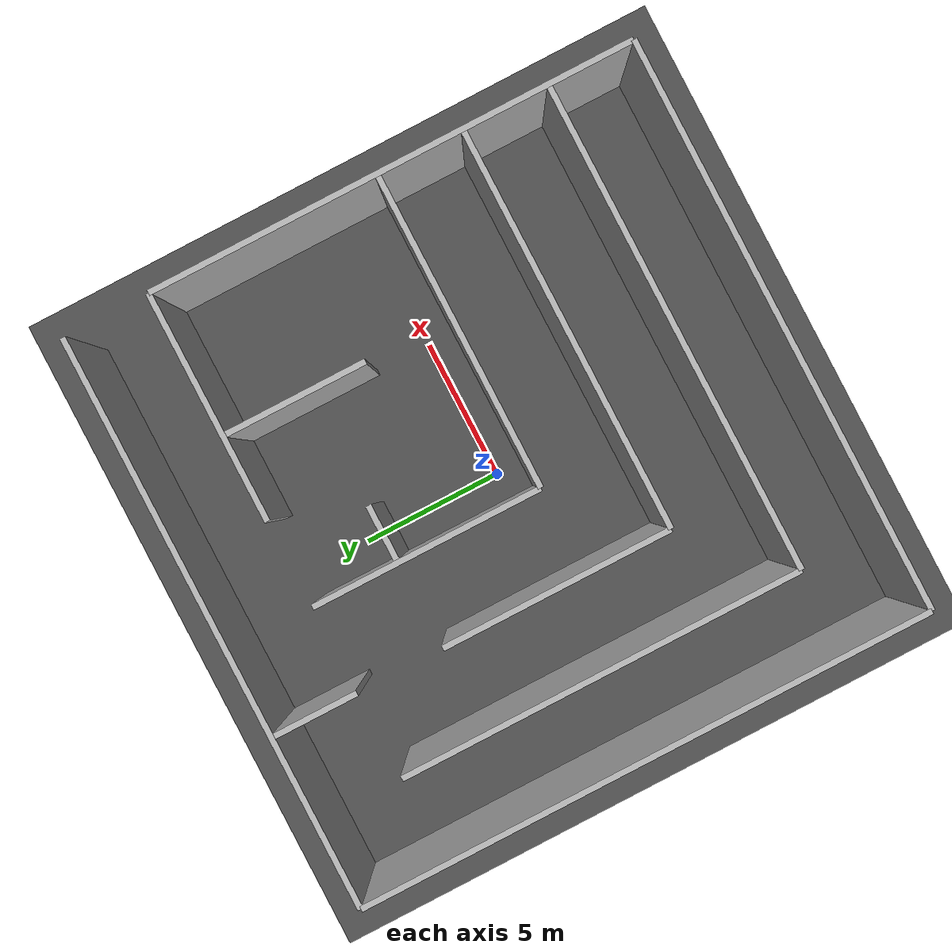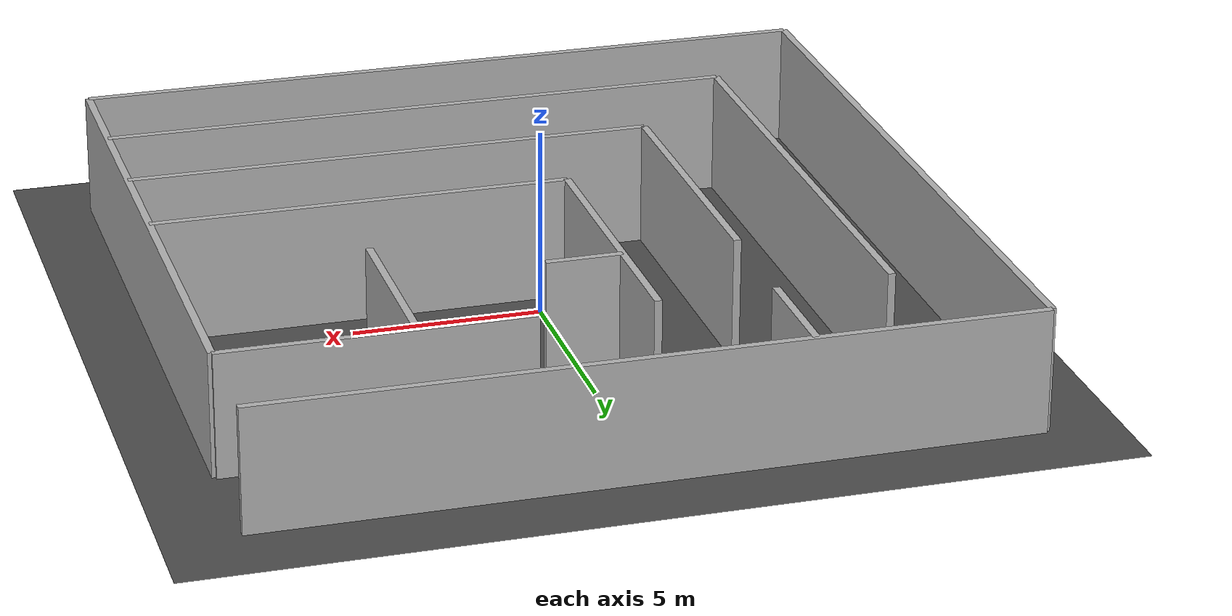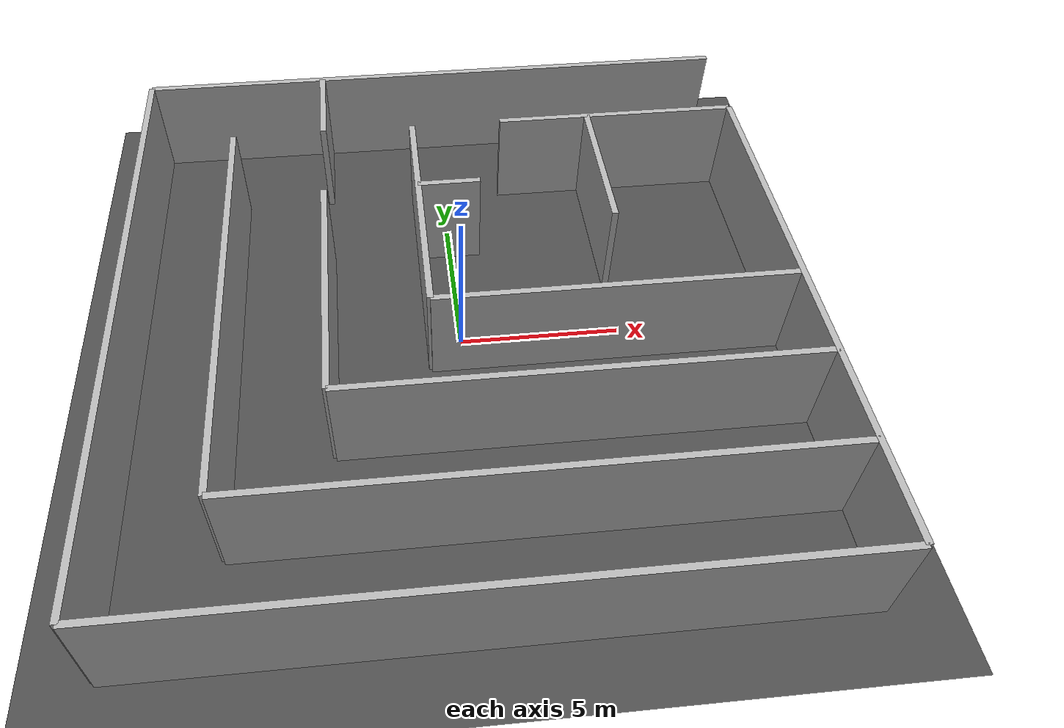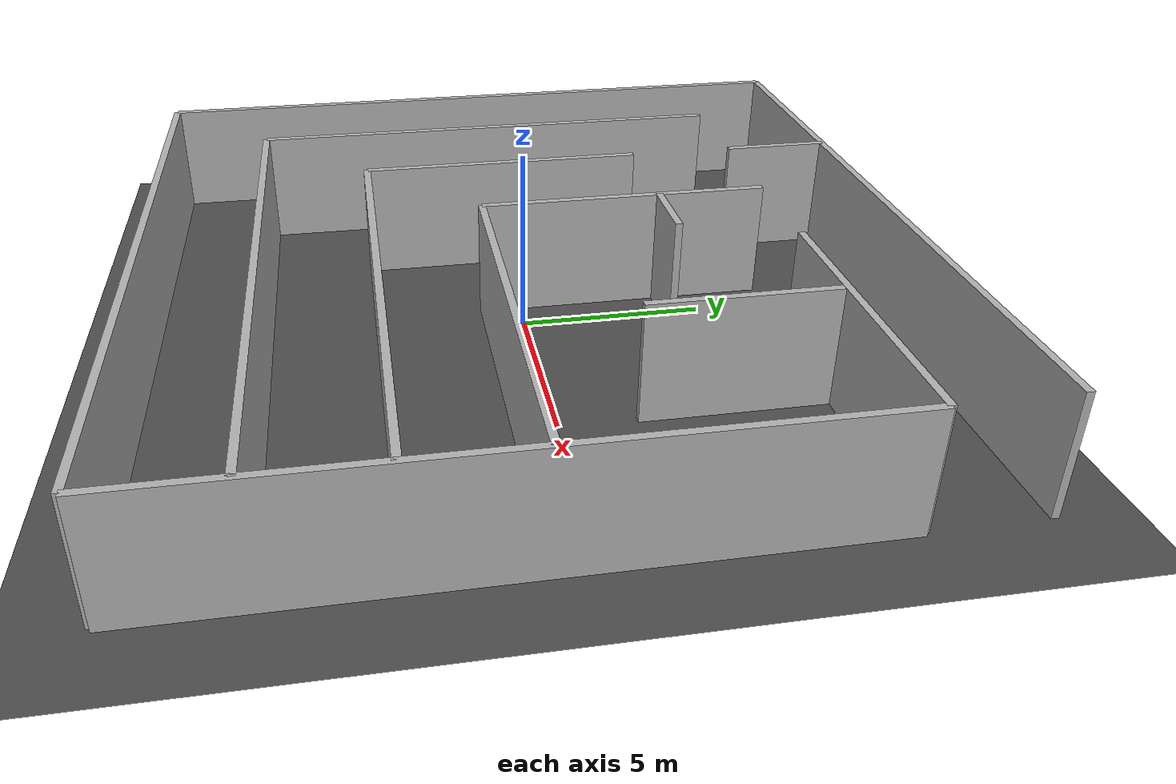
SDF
<?xml version="1.0" encoding="UTF-8"?>
<sdf version="1.9">
  <world name="default">
    <physics type="ode">
      <max_step_size>0.004</max_step_size>
      <real_time_factor>1.0</real_time_factor>
      <real_time_update_rate>250</real_time_update_rate>
    </physics>
    <plugin name="gz::sim::systems::Physics" filename="gz-sim-physics-system"/>
    <plugin name="gz::sim::systems::UserCommands" filename="gz-sim-user-commands-system"/>
    <plugin name="gz::sim::systems::SceneBroadcaster" filename="gz-sim-scene-broadcaster-system"/>
    <plugin name="gz::sim::systems::Contact" filename="gz-sim-contact-system"/>
    <plugin name="gz::sim::systems::Imu" filename="gz-sim-imu-system"/>
    <plugin name="gz::sim::systems::AirPressure" filename="gz-sim-air-pressure-system"/>
    <plugin name="gz::sim::systems::AirSpeed" filename="gz-sim-air-speed-system"/>
    <plugin name="gz::sim::systems::ApplyLinkWrench" filename="gz-sim-apply-link-wrench-system"/>
    <plugin name="gz::sim::systems::NavSat" filename="gz-sim-navsat-system"/>
    <plugin name="gz::sim::systems::Sensors" filename="gz-sim-sensors-system">
      <render_engine>ogre2</render_engine>
    </plugin>
    <gui fullscreen="false">
      <!-- 3D scene -->
      <plugin filename="MinimalScene" name="3D View">
        <gz-gui>
          <title>3D View</title>
          <property type="bool" key="showTitleBar">false</property>
          <property type="string" key="state">docked</property>
        </gz-gui>
        <engine>ogre2</engine>
        <scene>scene</scene>
        <ambient_light>0.4 0.4 0.4</ambient_light>
        <background_color>0.8 0.8 0.8</background_color>
        <camera_pose>-6 0 6 0 0.5 0</camera_pose>
        <camera_clip>
          <near>0.25</near>
          <far>25000</far>
        </camera_clip>
      </plugin>
      <!-- Plugins that add functionality to the scene -->
      <plugin filename="EntityContextMenuPlugin" name="Entity context menu">
        <gz-gui>
          <property key="state" type="string">floating</property>
          <property key="width" type="double">5</property>
          <property key="height" type="double">5</property>
          <property key="showTitleBar" type="bool">false</property>
        </gz-gui>
      </plugin>
      <plugin filename="GzSceneManager" name="Scene Manager">
        <gz-gui>
          <property key="resizable" type="bool">false</property>
          <property key="width" type="double">5</property>
          <property key="height" type="double">5</property>
          <property key="state" type="string">floating</property>
          <property key="showTitleBar" type="bool">false</property>
        </gz-gui>
      </plugin>
      <plugin filename="InteractiveViewControl" name="Interactive view control">
        <gz-gui>
          <property key="resizable" type="bool">false</property>
          <property key="width" type="double">5</property>
          <property key="height" type="double">5</property>
          <property key="state" type="string">floating</property>
          <property key="showTitleBar" type="bool">false</property>
        </gz-gui>
      </plugin>
      <plugin filename="CameraTracking" name="Camera Tracking">
        <gz-gui>
          <property key="resizable" type="bool">false</property>
          <property key="width" type="double">5</property>
          <property key="height" type="double">5</property>
          <property key="state" type="string">floating</property>
          <property key="showTitleBar" type="bool">false</property>
        </gz-gui>
      </plugin>
      <plugin filename="MarkerManager" name="Marker manager">
        <gz-gui>
          <property key="resizable" type="bool">false</property>
          <property key="width" type="double">5</property>
          <property key="height" type="double">5</property>
          <property key="state" type="string">floating</property>
          <property key="showTitleBar" type="bool">false</property>
        </gz-gui>
      </plugin>
      <plugin filename="SelectEntities" name="Select Entities">
        <gz-gui>
          <anchors target="Select entities">
            <line own="right" target="right"/>
            <line own="top" target="top"/>
          </anchors>
          <property key="resizable" type="bool">false</property>
          <property key="width" type="double">5</property>
          <property key="height" type="double">5</property>
          <property key="state" type="string">floating</property>
          <property key="showTitleBar" type="bool">false</property>
        </gz-gui>
      </plugin>
      <plugin filename="VisualizationCapabilities" name="Visualization Capabilities">
        <gz-gui>
          <property key="resizable" type="bool">false</property>
          <property key="width" type="double">5</property>
          <property key="height" type="double">5</property>
          <property key="state" type="string">floating</property>
          <property key="showTitleBar" type="bool">false</property>
        </gz-gui>
      </plugin>
      <plugin filename="Spawn" name="Spawn Entities">
        <gz-gui>
          <anchors target="Select entities">
            <line own="right" target="right"/>
            <line own="top" target="top"/>
          </anchors>
          <property key="resizable" type="bool">false</property>
          <property key="width" type="double">5</property>
          <property key="height" type="double">5</property>
          <property key="state" type="string">floating</property>
          <property key="showTitleBar" type="bool">false</property>
        </gz-gui>
      </plugin>
      <plugin name="World control" filename="WorldControl">
        <gz-gui>
          <title>World control</title>
          <property type="bool" key="showTitleBar">0</property>
          <property type="bool" key="resizable">0</property>
          <property type="double" key="height">72</property>
          <property type="double" key="width">121</property>
          <property type="double" key="z">1</property>
          <property type="string" key="state">floating</property>
          <anchors target="3D View">
            <line own="left" target="left"/>
            <line own="bottom" target="bottom"/>
          </anchors>
        </gz-gui>
        <play_pause>1</play_pause>
        <step>1</step>
        <start_paused>1</start_paused>
      </plugin>
      <plugin name="World stats" filename="WorldStats">
        <gz-gui>
          <title>World stats</title>
          <property type="bool" key="showTitleBar">0</property>
          <property type="bool" key="resizable">0</property>
          <property type="double" key="height">110</property>
          <property type="double" key="width">290</property>
          <property type="double" key="z">1</property>
          <property type="string" key="state">floating</property>
          <anchors target="3D View">
            <line own="right" target="right"/>
            <line own="bottom" target="bottom"/>
          </anchors>
        </gz-gui>
        <sim_time>1</sim_time>
        <real_time>1</real_time>
        <real_time_factor>1</real_time_factor>
        <iterations>1</iterations>
      </plugin>
      <plugin name="Entity tree" filename="EntityTree"/>
    </gui>
    <gravity>0 0 -9.8</gravity>
    <magnetic_field>6e-06 2.3e-05 -4.2e-05</magnetic_field>
    <atmosphere type="adiabatic"/>
    <scene>
      <grid>false</grid>
      <ambient>0.4 0.4 0.4 1</ambient>
      <background>0.7 0.7 0.7 1</background>
      <shadows>true</shadows>
    </scene>

    <light name="sunUTC" type="directional">
      <pose>0 0 500 0 -0 0</pose>
      <cast_shadows>true</cast_shadows>
      <intensity>1</intensity>
      <direction>0.001 0.625 -0.78</direction>
      <diffuse>0.904 0.904 0.904 1</diffuse>
      <specular>0.271 0.271 0.271 1</specular>
      <attenuation>
        <range>2000</range>
        <linear>0</linear>
        <constant>1</constant>
        <quadratic>0</quadratic>
      </attenuation>
      <spot>
        <inner_angle>0</inner_angle>
        <outer_angle>0</outer_angle>
        <falloff>0</falloff>
      </spot>
    </light>
    <spherical_coordinates>
      <surface_model>EARTH_WGS84</surface_model>
      <world_frame_orientation>ENU</world_frame_orientation>
      <latitude_deg>47.397971057728974</latitude_deg>
      <longitude_deg> 8.546163739800146</longitude_deg>
      <elevation>0</elevation>
    </spherical_coordinates>

    <model name='maze'>
      <static>1</static>
      <link name='Wall_0'>
        <pose degrees="true">-10 -10 0 0 0 90</pose>
        <collision name='Wall_0_Collision'>
          <pose>10 0 1.25 0 0 0</pose>
          <geometry>
            <box>
              <size>20 0.2 4</size>
            </box>
          </geometry>
        </collision>
        <visual name='Wall_0_Visual'>
          <pose>10 0 1.25 0 0 0</pose>
          <geometry>
            <box>
              <size>20 0.2 4</size>
            </box>
          </geometry>
          <material>
            <diffuse>0.699999988 0.699999988 0.699999988 1</diffuse>
          </material>
        </visual>
      </link>

      <link name='Wall_1'>
        <pose>-10 -10 0 0 0 0</pose>
        <collision name='Wall_1_Collision'>
          <pose>10 0 1.25 0 0 0</pose>
          <geometry>
            <box>
              <size>20 0.2 4</size>
            </box>
          </geometry>
        </collision>
        <visual name='Wall_1_Visual'>
          <pose>10 0 1.25 0 0 0</pose>
          <geometry>
            <box>
              <size>20 0.2 4</size>
            </box>
          </geometry>
          <material>
            <diffuse>0.699999988 0.699999988 0.699999988 1</diffuse>
          </material>
        </visual>
      </link>

      <link name='Wall_2'>
        <pose degrees="true">10 -10 0 0 0 90</pose>
        <collision name='Wall_2_Collision'>
          <pose>8.5 0 1.25 0 0 0</pose>
          <geometry>
            <box>
              <size>17 0.2 4</size>
            </box>
          </geometry>
        </collision>
        <visual name='Wall_2_Visual'>
          <pose>8.5 0 1.25 0 0 0</pose>
          <geometry>
            <box>
              <size>17 0.2 4</size>
            </box>
          </geometry>
          <material>
            <diffuse>0.699999988 0.699999988 0.699999988 1</diffuse>
          </material>
        </visual>
      </link>

      <link name='Wall_3'>
        <pose>-10 10 0 0 0 0</pose>
        <collision name='Wall_3_Collision'>
          <pose>10 0 1.25 0 0 0</pose>
          <geometry>
            <box>
              <size>20 0.2 4</size>
            </box>
          </geometry>
        </collision>
        <visual name='Wall_3_Visual'>
          <pose>10 0 1.25 0 0 0</pose>
          <geometry>
            <box>
              <size>20 0.2 4</size>
            </box>
          </geometry>
          <material>
            <diffuse>0.699999988 0.699999988 0.699999988 1</diffuse>
          </material>
        </visual>
      </link>

      <link name='Wall_4'>
        <pose>-7 -7 0 0 0 0</pose>
        <collision name='Wall_4_Collision'>
          <pose>8.5 0 1.25 0 0 0</pose>
          <geometry>
            <box>
              <size>17 0.2 4</size>
            </box>
          </geometry>
        </collision>
        <visual name='Wall_4_Visual'>
          <pose>8.5 0 1.25 0 0 0</pose>
          <geometry>
            <box>
              <size>17 0.2 4</size>
            </box>
          </geometry>
          <material>
            <diffuse>0.699999988 0.699999988 0.699999988 1</diffuse>
          </material>
        </visual>
      </link>

      <link name='Wall_5'>
        <pose degrees="true">-7 -7 0 0 0 90</pose>
        <collision name='Wall_5_Collision'>
          <pose>7 0 1.25 0 0 0</pose>
          <geometry>
            <box>
              <size>14 0.2 4</size>
            </box>
          </geometry>
        </collision>
        <visual name='Wall_5_Visual'>
          <pose>7 0 1.25 0 0 0</pose>
          <geometry>
            <box>
              <size>14 0.2 4</size>
            </box>
          </geometry>
          <material>
            <diffuse>0.699999988 0.699999988 0.699999988 1</diffuse>
          </material>
        </visual>
      </link>

      <link name='Wall_6'>
        <pose>-4 -4 0 0 0 0</pose>
        <collision name='Wall_6_Collision'>
          <pose>7 0 1.25 0 0 0</pose>
          <geometry>
            <box>
              <size>14 0.2 4</size>
            </box>
          </geometry>
        </collision>
        <visual name='Wall_6_Visual'>
          <pose>7 0 1.25 0 0 0</pose>
          <geometry>
            <box>
              <size>14 0.2 4</size>
            </box>
          </geometry>
          <material>
            <diffuse>0.699999988 0.699999988 0.699999988 1</diffuse>
          </material>
        </visual>
      </link>

      <link name='Wall_7'>
        <pose degrees="true">-4 -4 0 0 0 90</pose>
        <collision name='Wall_7_Collision'>
          <pose>4 0 1.25 0 0 0</pose>
          <geometry>
            <box>
              <size>8 0.2 4</size>
            </box>
          </geometry>
        </collision>
        <visual name='Wall_7_Visual'>
          <pose>4 0 1.25 0 0 0</pose>
          <geometry>
            <box>
              <size>8 0.2 4</size>
            </box>
          </geometry>
          <material>
            <diffuse>0.699999988 0.699999988 0.699999988 1</diffuse>
          </material>
        </visual>
      </link>

      <link name='Wall_8'>
        <pose>-1 -1 0 0 0 0</pose>
        <collision name='Wall_8_Collision'>
          <pose>5.5 0 1.25 0 0 0</pose>
          <geometry>
            <box>
              <size>11 0.2 4</size>
            </box>
          </geometry>
        </collision>
        <visual name='Wall_8_Visual'>
          <pose>5.5 0 1.25 0 0 0</pose>
          <geometry>
            <box>
              <size>11 0.2 4</size>
            </box>
          </geometry>
          <material>
            <diffuse>0.699999988 0.699999988 0.699999988 1</diffuse>
          </material>
        </visual>
      </link>

      <link name='Wall_9'>
        <pose degrees="true">-1 -1 0 0 0 90</pose>
        <collision name='Wall_9_Collision'>
          <pose>4 0 1.25 0 0 0</pose>
          <geometry>
            <box>
              <size>8 0.2 4</size>
            </box>
          </geometry>
        </collision>
        <visual name='Wall_9_Visual'>
          <pose>4 0 1.25 0 0 0</pose>
          <geometry>
            <box>
              <size>8 0.2 4</size>
            </box>
          </geometry>
          <material>
            <diffuse>0.699999988 0.699999988 0.699999988 1</diffuse>
          </material>
        </visual>
      </link>

      <link name='Wall_10'>
        <pose degrees="true">-4 7 0 0 0 90</pose>
        <collision name='Wall_10_Collision'>
          <pose>1.5 0 1.25 0 0 0</pose>
          <geometry>
            <box>
              <size>3 0.2 4</size>
            </box>
          </geometry>
        </collision>
        <visual name='Wall_10_Visual'>
          <pose>1.5 0 1.25 0 0 0</pose>
          <geometry>
            <box>
              <size>3 0.2 4</size>
            </box>
          </geometry>
          <material>
            <diffuse>0.699999988 0.699999988 0.699999988 1</diffuse>
          </material>
        </visual>
      </link>

      <link name='Wall_11'>
        <pose>-1 4 0 0 0 0</pose>
        <collision name='Wall_11_Collision'>
          <pose>1 0 1.25 0 0 0</pose>
          <geometry>
            <box>
              <size>2 0.2 4</size>
            </box>
          </geometry>
        </collision>
        <visual name='Wall_11_Visual'>
          <pose>1 0 1.25 0 0 0</pose>
          <geometry>
            <box>
              <size>2 0.2 4</size>
            </box>
          </geometry>
          <material>
            <diffuse>0.699999988 0.699999988 0.699999988 1</diffuse>
          </material>
        </visual>
      </link>

      <link name='Wall_12'>
        <pose>2 7 0 0 0 0</pose>
        <collision name='Wall_12_Collision'>
          <pose>4 0 1.25 0 0 0</pose>
          <geometry>
            <box>
              <size>8 0.2 4</size>
            </box>
          </geometry>
        </collision>
        <visual name='Wall_12_Visual'>
          <pose>4 0 1.25 0 0 0</pose>
          <geometry>
            <box>
              <size>8 0.2 4</size>
            </box>
          </geometry>
          <material>
            <diffuse>0.699999988 0.699999988 0.699999988 1</diffuse>
          </material>
        </visual>
      </link>

      <link name='Wall_13'>
        <pose degrees="true">5 2 0 0 0 90</pose>
        <collision name='Wall_13_Collision'>
          <pose>2.5 0 1.25 0 0 0</pose>
          <geometry>
            <box>
              <size>5 0.2 4</size>
            </box>
          </geometry>
        </collision>
        <visual name='Wall_13_Visual'>
          <pose>2.5 0 1.25 0 0 0</pose>
          <geometry>
            <box>
              <size>5 0.2 4</size>
            </box>
          </geometry>
          <material>
            <diffuse>0.699999988 0.699999988 0.699999988 1</diffuse>
          </material>
        </visual>
      </link>
    </model>

    <model name="floor">
      <static>true</static>
      <link name="link">
        <collision name="collision">
          <geometry>
            <plane>
              <normal>0 0 1</normal>
              <size>100 100</size>
            </plane>
          </geometry>
          <surface>
            <friction>
              <ode>
                <mu>100</mu>
                <mu2>50</mu2>
              </ode>
            </friction>
          </surface>
        </collision>
        <visual name="visual">
          <cast_shadows>false</cast_shadows>
          <geometry>
            <plane>
              <normal>0 0 1</normal>
              <size>100 100</size>
            </plane>
          </geometry>
          <material>
            <diffuse>0.3 0.3 0.3 1</diffuse>
          </material>
        </visual>
      </link>
    </model>

  </world>
</sdf>
